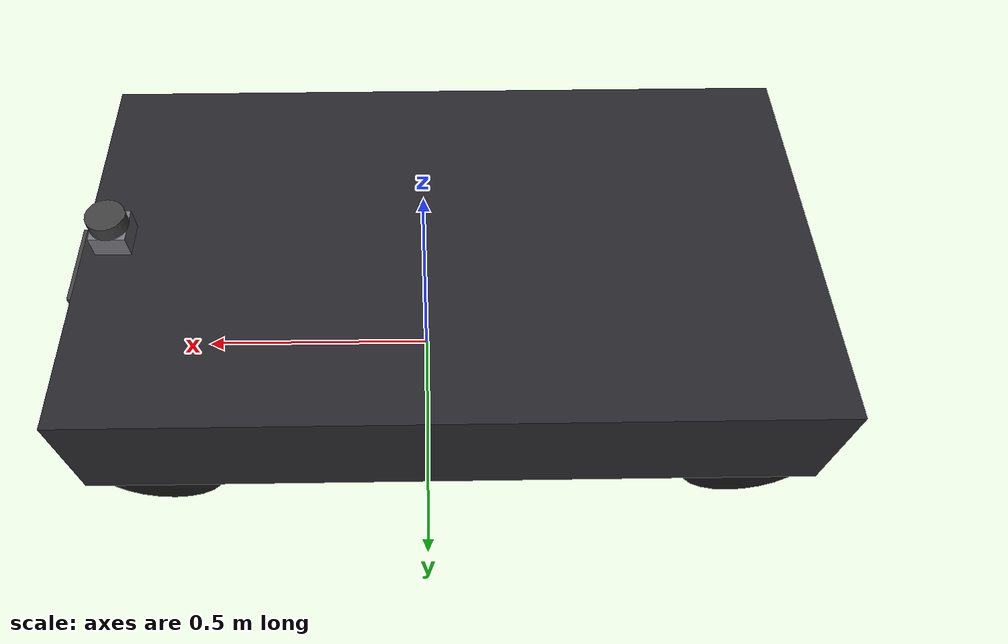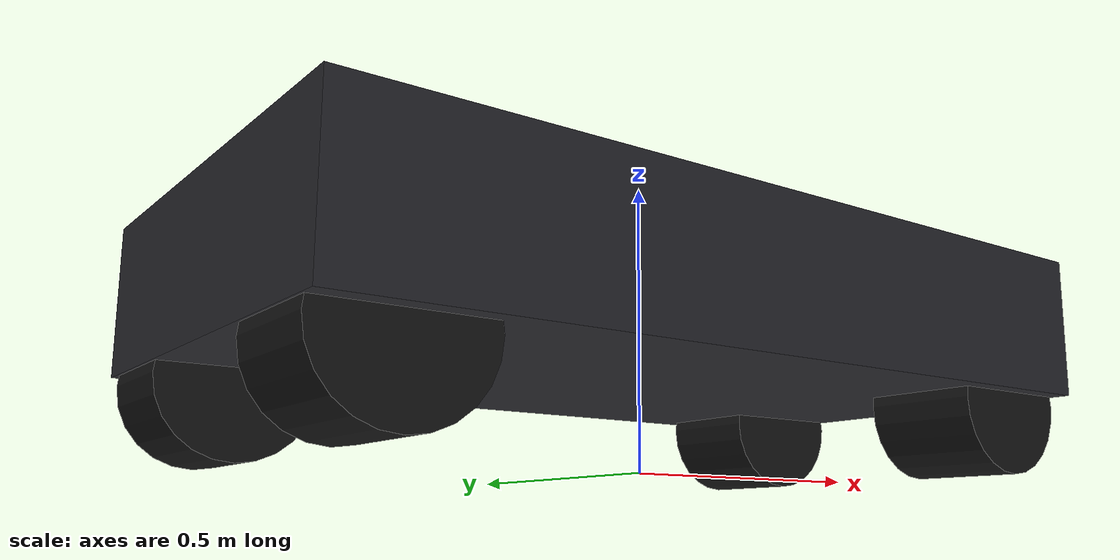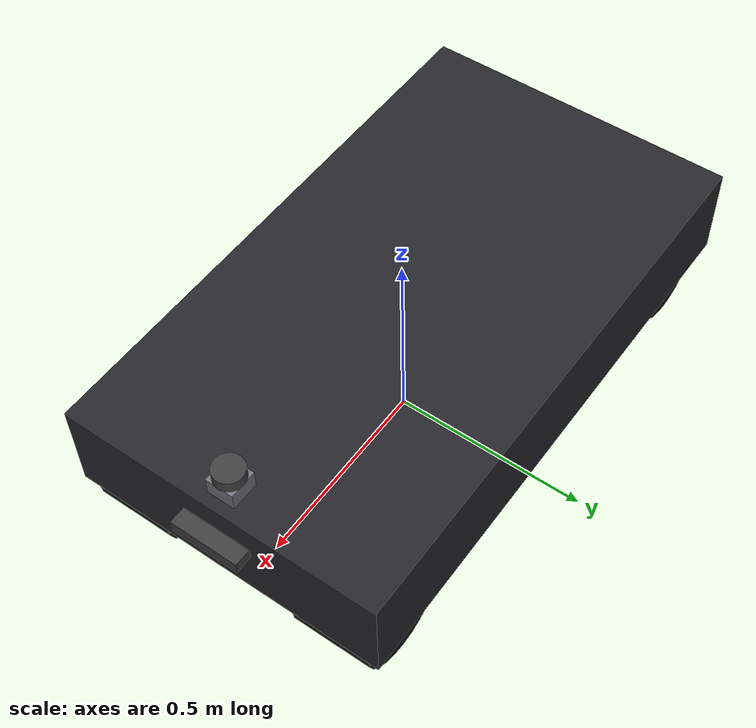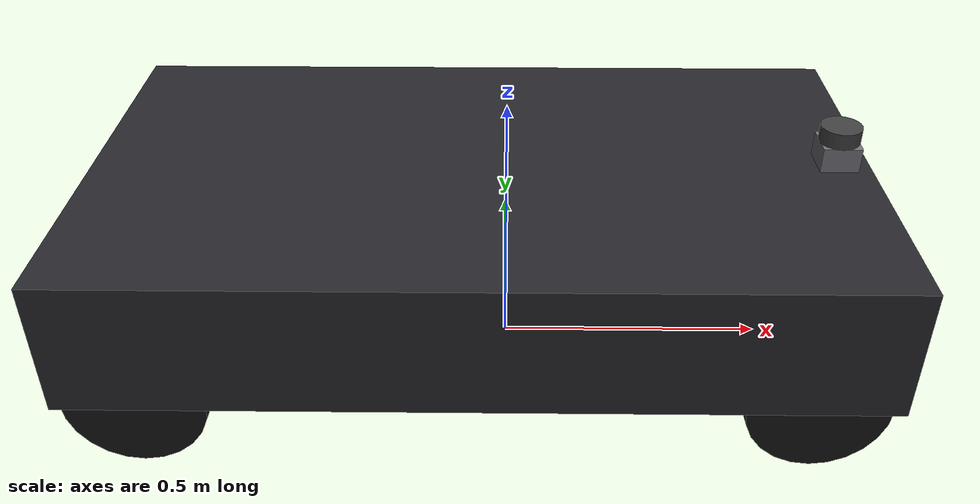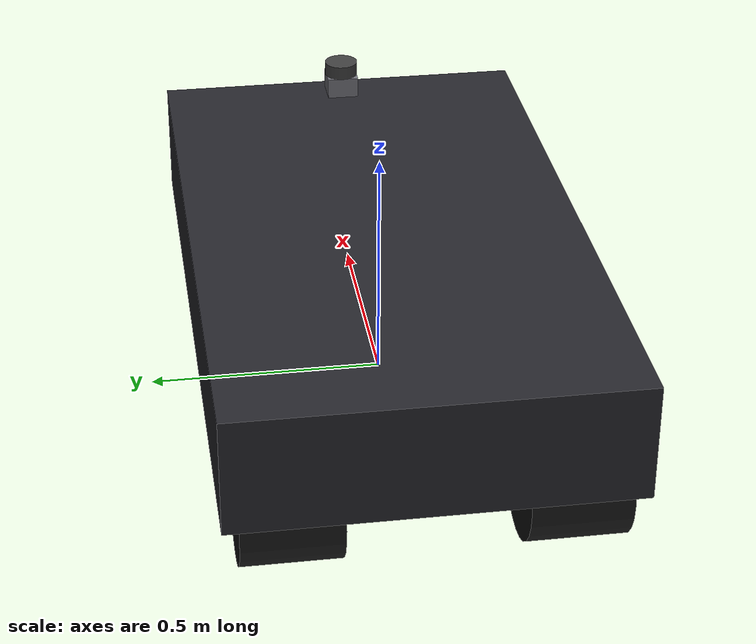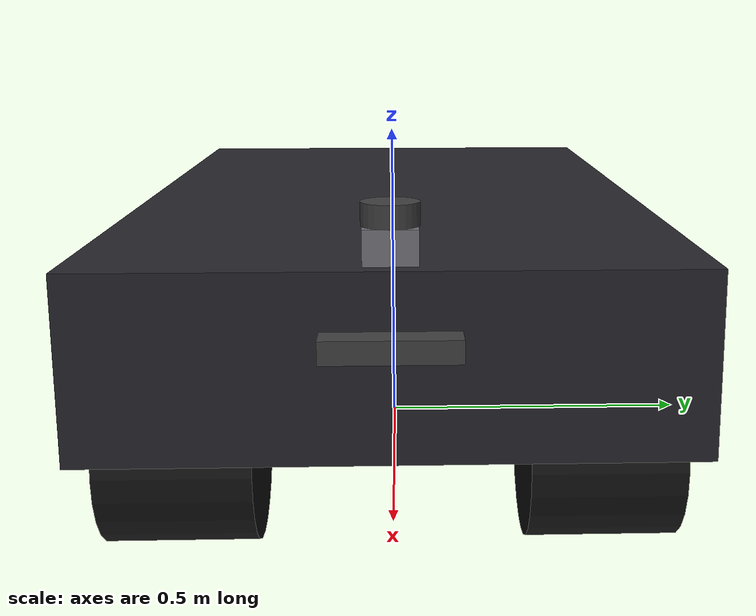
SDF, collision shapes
<?xml version="1.0"?>
<sdf version="1.9">
  <model name="tadeocar">
    <static>false</static>

    <!-- ==================== DECK ==================== -->
    <link name="base_link">
      <pose>0 0 0.125 0 0 0</pose>

      <inertial>
        <mass>50.0</mass>
        <pose>-0.048 0 0.141 0 0 0</pose>
        <inertia>
          <ixx>3.020</ixx>
          <iyy>8.630</iyy>
          <izz>11.146</izz>
          <ixy>0</ixy><ixz>0</ixz><iyz>0</iyz>
        </inertia>
      </inertial>

      <collision name="deck_collision">
        <pose>-0.048 0 0.141 0 0 0</pose>
        <geometry><box><size>1.418 0.815 0.246</size></box></geometry>
        <surface>
          <friction><ode><mu>0.6</mu><mu2>0.6</mu2></ode></friction>
        </surface>
      </collision>

      <visual name="deck_visual">
        <pose>0 0 0.155 0 0 0</pose>
        <geometry>
          <mesh><uri>meshes/chassis/chasis_base.dae</uri><scale>1 1 1</scale></mesh>
        </geometry>
        <material>
          <ambient>0.08 0.08 0.09 1</ambient>
          <diffuse>0.15 0.15 0.17 1</diffuse>
        </material>
      </visual>
    </link>

    <!-- ==================== SENSOR MAST ==================== -->
    <link name="sensor_mast_link">
      <pose>0.60 0 0.390 0 0 0</pose>
      <inertial>
        <mass>0.3</mass>
        <inertia>
          <ixx>0.0004</ixx><iyy>0.0004</iyy><izz>0.0002</izz>
          <ixy>0</ixy><ixz>0</ixz><iyz>0</iyz>
        </inertia>
      </inertial>
      <collision name="mast_collision">
        <geometry><box><size>0.07 0.07 0.09</size></box></geometry>
      </collision>
      <visual name="mast_visual">
        <geometry><box><size>0.07 0.07 0.09</size></box></geometry>
        <material>
          <ambient>0.22 0.22 0.24 1</ambient>
          <diffuse>0.45 0.45 0.48 1</diffuse>
        </material>
      </visual>
    </link>

    <joint name="sensor_mast_joint" type="fixed">
      <parent>base_link</parent>
      <child>sensor_mast_link</child>
    </joint>

    <!-- ==================== LiDAR: YDLIDAR X2 ==================== -->
    <link name="base_scan">
      <pose>0.60 0 0.450 0 0 0</pose>

      <inertial>
        <mass>0.2</mass>
        <inertia>
          <ixx>0.0001</ixx><iyy>0.0001</iyy><izz>0.0001</izz>
          <ixy>0</ixy><ixz>0</ixz><iyz>0</iyz>
        </inertia>
      </inertial>

      <collision name="lidar_collision">
        <geometry><cylinder><radius>0.0375</radius><length>0.030</length></cylinder></geometry>
      </collision>

      <visual name="lidar_visual">
        <geometry><cylinder><radius>0.0375</radius><length>0.030</length></cylinder></geometry>
        <material>
          <ambient>0.12 0.12 0.12 1</ambient>
          <diffuse>0.25 0.25 0.25 1</diffuse>
        </material>
      </visual>

      <sensor name="lidar" type="gpu_lidar">
        <pose>0 0 0 0 0 0</pose>
        <always_on>true</always_on>
        <visualize>true</visualize>
        <update_rate>7</update_rate>
        <topic>scan</topic>
        <gz_frame_id>base_scan</gz_frame_id>
        <lidar>
          <scan>
            <horizontal>
              <samples>428</samples>
              <resolution>1</resolution>
              <min_angle>-3.141593</min_angle>
              <max_angle>3.141593</max_angle>
            </horizontal>
          </scan>
          <range>
            <min>0.12</min>
            <max>8.0</max>
            <resolution>0.01</resolution>
          </range>
          <noise>
            <type>gaussian</type>
            <mean>0.0</mean>
            <stddev>0.015</stddev>
          </noise>
        </lidar>
      </sensor>
    </link>

    <joint name="lidar_joint" type="fixed">
      <parent>base_link</parent>
      <child>base_scan</child>
    </joint>

    <!-- ==================== ZED 2i ==================== -->
    <link name="zed2i_camera_link">
      <pose>0.68 0 0.300 0 0 0</pose>

      <inertial>
        <mass>0.175</mass>
        <inertia>
          <ixx>0.0005</ixx><iyy>0.0001</iyy><izz>0.0005</izz>
          <ixy>0</ixy><ixz>0</ixz><iyz>0</iyz>
        </inertia>
      </inertial>

      <collision name="zed2i_collision">
        <pose>0.004 0 0 0 0 0</pose>
        <geometry><box><size>0.043 0.175 0.030</size></box></geometry>
      </collision>

      <visual name="zed2i_visual">
        <geometry>
          <mesh><uri>meshes/sensors/zed2i.stl</uri><scale>1 1 1</scale></mesh>
        </geometry>
        <material>
          <ambient>0.12 0.12 0.12 1</ambient>
          <diffuse>0.25 0.25 0.25 1</diffuse>
        </material>
      </visual>

      <!-- Left imager, half the 0.12 m baseline off centre. -->
      <sensor name="zed2i_left" type="rgbd_camera">
        <pose>0 0.06 0 0 0 0</pose>
        <always_on>true</always_on>
        <update_rate>15</update_rate>
        <visualize>false</visualize>
        <topic>zed2i</topic>
        <gz_frame_id>zed2i_left_camera_optical_frame</gz_frame_id>
        <camera>
          <horizontal_fov>1.919862</horizontal_fov>
          <image>
            <width>672</width>
            <height>376</height>
            <format>R8G8B8</format>
          </image>
          <clip>
            <near>0.3</near>
            <far>20.0</far>
          </clip>
          <depth_camera>
            <clip>
              <near>0.3</near>
              <far>20.0</far>
            </clip>
          </depth_camera>
          <noise>
            <type>gaussian</type>
            <mean>0.0</mean>
            <stddev>0.005</stddev>
          </noise>
        </camera>
      </sensor>

      <sensor name="zed2i_imu" type="imu">
        <pose>-0.002 0 0 0 0 0</pose>
        <always_on>true</always_on>
        <update_rate>400</update_rate>
        <topic>zed2i/imu</topic>
        <gz_frame_id>zed2i_imu_link</gz_frame_id>
        <imu>
          <angular_velocity>
            <x><noise type="gaussian"><mean>0.0</mean><stddev>0.0002</stddev></noise></x>
            <y><noise type="gaussian"><mean>0.0</mean><stddev>0.0002</stddev></noise></y>
            <z><noise type="gaussian"><mean>0.0</mean><stddev>0.0002</stddev></noise></z>
          </angular_velocity>
          <linear_acceleration>
            <x><noise type="gaussian"><mean>0.0</mean><stddev>0.017</stddev></noise></x>
            <y><noise type="gaussian"><mean>0.0</mean><stddev>0.017</stddev></noise></y>
            <z><noise type="gaussian"><mean>0.0</mean><stddev>0.017</stddev></noise></z>
          </linear_acceleration>
        </imu>
      </sensor>
    </link>

    <joint name="zed2i_camera_joint" type="fixed">
      <parent>base_link</parent>
      <child>zed2i_camera_link</child>
    </joint>

    <!-- ==================== FRONT LEFT MODULE ==================== -->
    <link name="front_left_steering_link">
      <pose>0.478 0.275 0.125 0 0 0</pose>
      <inertial>
        <mass>6.0</mass>
        <pose>0 0 0.10 0 0 0</pose>
        <inertia>
          <ixx>0.0362</ixx><iyy>0.0250</iyy><izz>0.0212</izz>
          <ixy>0</ixy><ixz>0</ixz><iyz>0</iyz>
        </inertia>
      </inertial>
      <collision name="front_left_steering_collision">
        <pose>0 0 0.10 0 0 0</pose>
        <geometry><box><size>0.10 0.18 0.20</size></box></geometry>
      </collision>
      <visual name="front_left_steering_visual">
        <pose>0 0 0.227 0 3.14159 3.14159</pose>
        <geometry>
          <mesh><uri>meshes/suspension/suspension.dae</uri><scale>1 1 1</scale></mesh>
        </geometry>
        <material>
          <ambient>0.22 0.22 0.24 1</ambient>
          <diffuse>0.45 0.45 0.48 1</diffuse>
        </material>
      </visual>
    </link>

    <joint name="front_left_steering_joint" type="revolute">
      <parent>base_link</parent>
      <child>front_left_steering_link</child>
      <axis>
        <xyz>0 0 1</xyz>
        <limit>
          <lower>-2.356</lower>
          <upper>2.356</upper>
          <effort>100</effort>
          <velocity>3.0</velocity>
        </limit>
        <dynamics>
          <damping>5.0</damping>
          <friction>2.0</friction>
        </dynamics>
      </axis>
    </joint>

    <link name="front_left_wheel_link">
      <pose>0.528 0.275 0.125 0 0 0</pose>
      <inertial>
        <mass>6.0</mass>
        <inertia>
          <ixx>0.0434</ixx><iyy>0.0469</iyy><izz>0.0434</izz>
          <ixy>0</ixy><ixz>0</ixz><iyz>0</iyz>
        </inertia>
      </inertial>
      <collision name="front_left_wheel_collision">
        <pose>0 0 0 1.5708 0 0</pose>
        <geometry><cylinder><radius>0.125</radius><length>0.2</length></cylinder></geometry>
        <surface>
          <friction>
            <ode>
              <mu>1.0</mu>
              <mu2>1.0</mu2>
              <slip1>0.0</slip1>
              <slip2>0.0</slip2>
            </ode>
          </friction>
          <contact>
            <ode>
              <kp>1000000.0</kp>
              <kd>100.0</kd>
              <min_depth>0.001</min_depth>
            </ode>
          </contact>
        </surface>
      </collision>
      <visual name="front_left_wheel_visual">
        <pose>0 0 0 1.5708 0 0</pose>
        <geometry>
          <mesh><uri>meshes/wheels/wheel.dae</uri><scale>1 1 1</scale></mesh>
        </geometry>
        <material>
          <ambient>0.04 0.04 0.04 1</ambient>
          <diffuse>0.08 0.08 0.08 1</diffuse>
        </material>
      </visual>
    </link>

    <joint name="front_left_wheel_joint" type="revolute">
      <parent>front_left_steering_link</parent>
      <child>front_left_wheel_link</child>
      <axis>
        <xyz>0 1 0</xyz>
        <limit>
          <lower>-1e16</lower>
          <upper>1e16</upper>
          <effort>200.0</effort>
          <velocity>60</velocity>
        </limit>
        <dynamics>
          <damping>0.01</damping>
          <friction>0.01</friction>
        </dynamics>
      </axis>
    </joint>
    <!-- ==================== FRONT RIGHT MODULE ==================== -->
    <link name="front_right_steering_link">
      <pose>0.478 -0.275 0.125 0 0 0</pose>
      <inertial>
        <mass>6.0</mass>
        <pose>0 0 0.10 0 0 0</pose>
        <inertia>
          <ixx>0.0362</ixx><iyy>0.0250</iyy><izz>0.0212</izz>
          <ixy>0</ixy><ixz>0</ixz><iyz>0</iyz>
        </inertia>
      </inertial>
      <collision name="front_right_steering_collision">
        <pose>0 0 0.10 0 0 0</pose>
        <geometry><box><size>0.10 0.18 0.20</size></box></geometry>
      </collision>
      <visual name="front_right_steering_visual">
        <pose>0 0 0.227 0 3.14159 -3.14159</pose>
        <geometry>
          <mesh><uri>meshes/suspension/suspension.dae</uri><scale>1 1 1</scale></mesh>
        </geometry>
        <material>
          <ambient>0.22 0.22 0.24 1</ambient>
          <diffuse>0.45 0.45 0.48 1</diffuse>
        </material>
      </visual>
    </link>

    <joint name="front_right_steering_joint" type="revolute">
      <parent>base_link</parent>
      <child>front_right_steering_link</child>
      <axis>
        <xyz>0 0 1</xyz>
        <limit>
          <lower>-2.356</lower>
          <upper>2.356</upper>
          <effort>100</effort>
          <velocity>3.0</velocity>
        </limit>
        <dynamics>
          <damping>5.0</damping>
          <friction>2.0</friction>
        </dynamics>
      </axis>
    </joint>

    <link name="front_right_wheel_link">
      <pose>0.528 -0.275 0.125 0 0 0</pose>
      <inertial>
        <mass>6.0</mass>
        <inertia>
          <ixx>0.0434</ixx><iyy>0.0469</iyy><izz>0.0434</izz>
          <ixy>0</ixy><ixz>0</ixz><iyz>0</iyz>
        </inertia>
      </inertial>
      <collision name="front_right_wheel_collision">
        <pose>0 0 0 1.5708 0 0</pose>
        <geometry><cylinder><radius>0.125</radius><length>0.2</length></cylinder></geometry>
        <surface>
          <friction>
            <ode>
              <mu>1.0</mu>
              <mu2>1.0</mu2>
              <slip1>0.0</slip1>
              <slip2>0.0</slip2>
            </ode>
          </friction>
          <contact>
            <ode>
              <kp>1000000.0</kp>
              <kd>100.0</kd>
              <min_depth>0.001</min_depth>
            </ode>
          </contact>
        </surface>
      </collision>
      <visual name="front_right_wheel_visual">
        <pose>0 0 0 1.5708 0 0</pose>
        <geometry>
          <mesh><uri>meshes/wheels/wheel.dae</uri><scale>1 1 1</scale></mesh>
        </geometry>
        <material>
          <ambient>0.04 0.04 0.04 1</ambient>
          <diffuse>0.08 0.08 0.08 1</diffuse>
        </material>
      </visual>
    </link>

    <joint name="front_right_wheel_joint" type="revolute">
      <parent>front_right_steering_link</parent>
      <child>front_right_wheel_link</child>
      <axis>
        <xyz>0 1 0</xyz>
        <limit>
          <lower>-1e16</lower>
          <upper>1e16</upper>
          <effort>200.0</effort>
          <velocity>60</velocity>
        </limit>
        <dynamics>
          <damping>0.01</damping>
          <friction>0.01</friction>
        </dynamics>
      </axis>
    </joint>
    <!-- ==================== REAR LEFT MODULE ==================== -->
    <link name="rear_left_steering_link">
      <pose>-0.58 0.275 0.125 0 0 0</pose>
      <inertial>
        <mass>6.0</mass>
        <pose>0 0 0.10 0 0 0</pose>
        <inertia>
          <ixx>0.0362</ixx><iyy>0.0250</iyy><izz>0.0212</izz>
          <ixy>0</ixy><ixz>0</ixz><iyz>0</iyz>
        </inertia>
      </inertial>
      <collision name="rear_left_steering_collision">
        <pose>0 0 0.10 0 0 0</pose>
        <geometry><box><size>0.10 0.18 0.20</size></box></geometry>
      </collision>
      <visual name="rear_left_steering_visual">
        <pose>0 0 0.227 0 3.14159 0.0</pose>
        <geometry>
          <mesh><uri>meshes/suspension/suspension.dae</uri><scale>1 1 1</scale></mesh>
        </geometry>
        <material>
          <ambient>0.22 0.22 0.24 1</ambient>
          <diffuse>0.45 0.45 0.48 1</diffuse>
        </material>
      </visual>
    </link>

    <joint name="rear_left_steering_joint" type="revolute">
      <parent>base_link</parent>
      <child>rear_left_steering_link</child>
      <axis>
        <xyz>0 0 1</xyz>
        <limit>
          <lower>-2.356</lower>
          <upper>2.356</upper>
          <effort>100</effort>
          <velocity>3.0</velocity>
        </limit>
        <dynamics>
          <damping>5.0</damping>
          <friction>2.0</friction>
        </dynamics>
      </axis>
    </joint>

    <link name="rear_left_wheel_link">
      <pose>-0.630 0.275 0.125 0 0 0</pose>
      <inertial>
        <mass>6.0</mass>
        <inertia>
          <ixx>0.0434</ixx><iyy>0.0469</iyy><izz>0.0434</izz>
          <ixy>0</ixy><ixz>0</ixz><iyz>0</iyz>
        </inertia>
      </inertial>
      <collision name="rear_left_wheel_collision">
        <pose>0 0 0 1.5708 0 0</pose>
        <geometry><cylinder><radius>0.125</radius><length>0.2</length></cylinder></geometry>
        <surface>
          <friction>
            <ode>
              <mu>1.0</mu>
              <mu2>1.0</mu2>
              <slip1>0.0</slip1>
              <slip2>0.0</slip2>
            </ode>
          </friction>
          <contact>
            <ode>
              <kp>1000000.0</kp>
              <kd>100.0</kd>
              <min_depth>0.001</min_depth>
            </ode>
          </contact>
        </surface>
      </collision>
      <visual name="rear_left_wheel_visual">
        <pose>0 0 0 1.5708 0 0</pose>
        <geometry>
          <mesh><uri>meshes/wheels/wheel.dae</uri><scale>1 1 1</scale></mesh>
        </geometry>
        <material>
          <ambient>0.04 0.04 0.04 1</ambient>
          <diffuse>0.08 0.08 0.08 1</diffuse>
        </material>
      </visual>
    </link>

    <joint name="rear_left_wheel_joint" type="revolute">
      <parent>rear_left_steering_link</parent>
      <child>rear_left_wheel_link</child>
      <axis>
        <xyz>0 1 0</xyz>
        <limit>
          <lower>-1e16</lower>
          <upper>1e16</upper>
          <effort>200.0</effort>
          <velocity>60</velocity>
        </limit>
        <dynamics>
          <damping>0.01</damping>
          <friction>0.01</friction>
        </dynamics>
      </axis>
    </joint>
    <!-- ==================== REAR RIGHT MODULE ==================== -->
    <link name="rear_right_steering_link">
      <pose>-0.58 -0.275 0.125 0 0 0</pose>
      <inertial>
        <mass>6.0</mass>
        <pose>0 0 0.10 0 0 0</pose>
        <inertia>
          <ixx>0.0362</ixx><iyy>0.0250</iyy><izz>0.0212</izz>
          <ixy>0</ixy><ixz>0</ixz><iyz>0</iyz>
        </inertia>
      </inertial>
      <collision name="rear_right_steering_collision">
        <pose>0 0 0.10 0 0 0</pose>
        <geometry><box><size>0.10 0.18 0.20</size></box></geometry>
      </collision>
      <visual name="rear_right_steering_visual">
        <pose>0 0 0.227 0 3.14159 0.0</pose>
        <geometry>
          <mesh><uri>meshes/suspension/suspension.dae</uri><scale>1 1 1</scale></mesh>
        </geometry>
        <material>
          <ambient>0.22 0.22 0.24 1</ambient>
          <diffuse>0.45 0.45 0.48 1</diffuse>
        </material>
      </visual>
    </link>

    <joint name="rear_right_steering_joint" type="revolute">
      <parent>base_link</parent>
      <child>rear_right_steering_link</child>
      <axis>
        <xyz>0 0 1</xyz>
        <limit>
          <lower>-2.356</lower>
          <upper>2.356</upper>
          <effort>100</effort>
          <velocity>3.0</velocity>
        </limit>
        <dynamics>
          <damping>5.0</damping>
          <friction>2.0</friction>
        </dynamics>
      </axis>
    </joint>

    <link name="rear_right_wheel_link">
      <pose>-0.630 -0.275 0.125 0 0 0</pose>
      <inertial>
        <mass>6.0</mass>
        <inertia>
          <ixx>0.0434</ixx><iyy>0.0469</iyy><izz>0.0434</izz>
          <ixy>0</ixy><ixz>0</ixz><iyz>0</iyz>
        </inertia>
      </inertial>
      <collision name="rear_right_wheel_collision">
        <pose>0 0 0 1.5708 0 0</pose>
        <geometry><cylinder><radius>0.125</radius><length>0.2</length></cylinder></geometry>
        <surface>
          <friction>
            <ode>
              <mu>1.0</mu>
              <mu2>1.0</mu2>
              <slip1>0.0</slip1>
              <slip2>0.0</slip2>
            </ode>
          </friction>
          <contact>
            <ode>
              <kp>1000000.0</kp>
              <kd>100.0</kd>
              <min_depth>0.001</min_depth>
            </ode>
          </contact>
        </surface>
      </collision>
      <visual name="rear_right_wheel_visual">
        <pose>0 0 0 1.5708 0 0</pose>
        <geometry>
          <mesh><uri>meshes/wheels/wheel.dae</uri><scale>1 1 1</scale></mesh>
        </geometry>
        <material>
          <ambient>0.04 0.04 0.04 1</ambient>
          <diffuse>0.08 0.08 0.08 1</diffuse>
        </material>
      </visual>
    </link>

    <joint name="rear_right_wheel_joint" type="revolute">
      <parent>rear_right_steering_link</parent>
      <child>rear_right_wheel_link</child>
      <axis>
        <xyz>0 1 0</xyz>
        <limit>
          <lower>-1e16</lower>
          <upper>1e16</upper>
          <effort>200.0</effort>
          <velocity>60</velocity>
        </limit>
        <dynamics>
          <damping>0.01</damping>
          <friction>0.01</friction>
        </dynamics>
      </axis>
    </joint>

    <!-- ==================== PLUGINS ==================== -->

    <plugin filename="ignition-gazebo-joint-state-publisher-system"
            name="ignition::gazebo::systems::JointStatePublisher">
      <topic>joint_states</topic>
      <joint_name>front_left_steering_joint</joint_name>
      <joint_name>front_left_wheel_joint</joint_name>
      <joint_name>front_right_steering_joint</joint_name>
      <joint_name>front_right_wheel_joint</joint_name>
      <joint_name>rear_left_steering_joint</joint_name>
      <joint_name>rear_left_wheel_joint</joint_name>
      <joint_name>rear_right_steering_joint</joint_name>
      <joint_name>rear_right_wheel_joint</joint_name>
    </plugin>

    <plugin filename="ignition-gazebo-joint-position-controller-system"
            name="ignition::gazebo::systems::JointPositionController">
      <joint_name>front_left_steering_joint</joint_name>
      <topic>model/tadeocar/joint/front_left_steering_joint/cmd_pos</topic>
      <p_gain>1200</p_gain>
      <i_gain>100</i_gain>
      <d_gain>100</d_gain>
      <i_max>400</i_max>
      <i_min>-400</i_min>
      <cmd_max>100.0</cmd_max>
      <cmd_min>-100.0</cmd_min>
    </plugin>
    <plugin filename="ignition-gazebo-joint-position-controller-system"
            name="ignition::gazebo::systems::JointPositionController">
      <joint_name>front_right_steering_joint</joint_name>
      <topic>model/tadeocar/joint/front_right_steering_joint/cmd_pos</topic>
      <p_gain>1200</p_gain>
      <i_gain>100</i_gain>
      <d_gain>100</d_gain>
      <i_max>400</i_max>
      <i_min>-400</i_min>
      <cmd_max>100.0</cmd_max>
      <cmd_min>-100.0</cmd_min>
    </plugin>
    <plugin filename="ignition-gazebo-joint-position-controller-system"
            name="ignition::gazebo::systems::JointPositionController">
      <joint_name>rear_left_steering_joint</joint_name>
      <topic>model/tadeocar/joint/rear_left_steering_joint/cmd_pos</topic>
      <p_gain>1200</p_gain>
      <i_gain>100</i_gain>
      <d_gain>100</d_gain>
      <i_max>400</i_max>
      <i_min>-400</i_min>
      <cmd_max>100.0</cmd_max>
      <cmd_min>-100.0</cmd_min>
    </plugin>
    <plugin filename="ignition-gazebo-joint-position-controller-system"
            name="ignition::gazebo::systems::JointPositionController">
      <joint_name>rear_right_steering_joint</joint_name>
      <topic>model/tadeocar/joint/rear_right_steering_joint/cmd_pos</topic>
      <p_gain>1200</p_gain>
      <i_gain>100</i_gain>
      <d_gain>100</d_gain>
      <i_max>400</i_max>
      <i_min>-400</i_min>
      <cmd_max>100.0</cmd_max>
      <cmd_min>-100.0</cmd_min>
    </plugin>
    <plugin filename="ignition-gazebo-joint-controller-system"
            name="ignition::gazebo::systems::JointController">
      <joint_name>front_left_wheel_joint</joint_name>
      <topic>model/tadeocar/joint/front_left_wheel_joint/cmd_vel</topic>
      <use_velocity_commands>true</use_velocity_commands>
    </plugin>
    <plugin filename="ignition-gazebo-joint-controller-system"
            name="ignition::gazebo::systems::JointController">
      <joint_name>front_right_wheel_joint</joint_name>
      <topic>model/tadeocar/joint/front_right_wheel_joint/cmd_vel</topic>
      <use_velocity_commands>true</use_velocity_commands>
    </plugin>
    <plugin filename="ignition-gazebo-joint-controller-system"
            name="ignition::gazebo::systems::JointController">
      <joint_name>rear_left_wheel_joint</joint_name>
      <topic>model/tadeocar/joint/rear_left_wheel_joint/cmd_vel</topic>
      <use_velocity_commands>true</use_velocity_commands>
    </plugin>
    <plugin filename="ignition-gazebo-joint-controller-system"
            name="ignition::gazebo::systems::JointController">
      <joint_name>rear_right_wheel_joint</joint_name>
      <topic>model/tadeocar/joint/rear_right_wheel_joint/cmd_vel</topic>
      <use_velocity_commands>true</use_velocity_commands>
    </plugin>

    <plugin filename="ignition-gazebo-odometry-publisher-system"
            name="ignition::gazebo::systems::OdometryPublisher">
      <odom_frame>odom</odom_frame>
      <robot_base_frame>base_footprint</robot_base_frame>
      <odom_topic>odom_truth</odom_topic>
      <odom_publish_frequency>50</odom_publish_frequency>
      <dimensions>3</dimensions>
    </plugin>

  </model>
</sdf>
